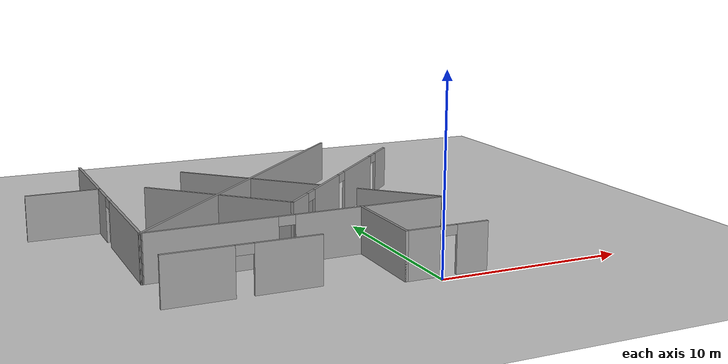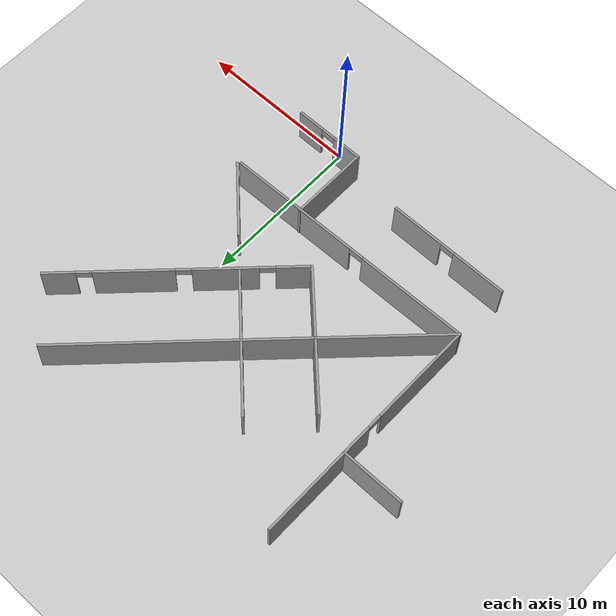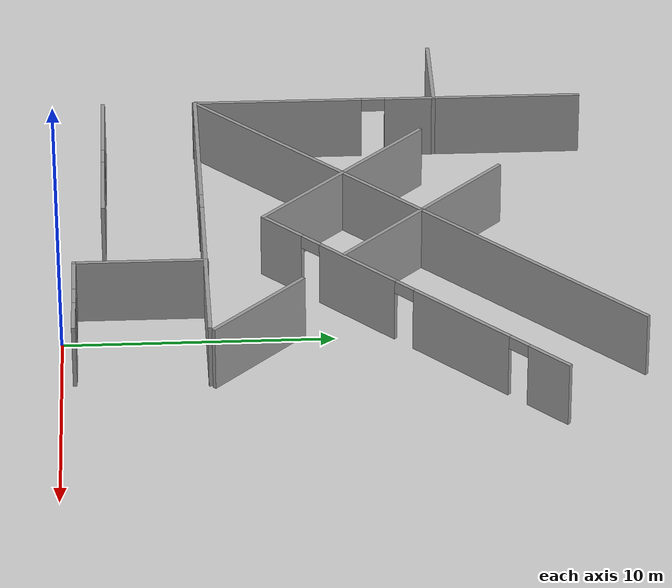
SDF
<sdf version="1.6">
 <world name="default">
  <model name="ground_plane">
   <static>1</static>
   <link name="link">
    <collision name="collision">
     <geometry><plane><normal>0 0 1</normal><size>100 100</size></plane></geometry>
     <surface>
      <contact><collide_bitmask>65535</collide_bitmask></contact>
      <friction><ode><mu>100</mu><mu2>50</mu2></ode></friction>
     </surface>
    </collision>
    <visual name="visual">
     <cast_shadows>0</cast_shadows>
     <geometry><plane><normal>0 0 1</normal><size>100 100</size></plane></geometry>
     <material>
      <script><uri>file://media/materials/scripts/gazebo.material</uri><name>Gazebo/Grey</name></script>
     </material>
    </visual>
   </link>
  </model>
  <model name="Level_1_with_doors">
   <link name="Wall_111">
    <pose>-19.8804 -8.17464 0 0 -0 0</pose>
    <visual name="Wall_111_Visual">
     <pose>0 0 1.25 0 -0 0</pose>
     <geometry><box><size>4 0.15 2.5</size></box></geometry>
     <material>
      <script><uri>file://media/materials/scripts/gazebo.material</uri><name>Gazebo/Grey</name></script>
      <ambient>1 1 1 1</ambient>
      <shader type="pixel"/>
     </material>
     <meta><layer>0</layer></meta>
    </visual>
    <collision name="Wall_111_Collision">
     <pose>0 0 1.25 0 -0 0</pose>
     <geometry><box><size>4 0.15 2.5</size></box></geometry>
     <surface>
      <friction>
       <ode><mu>1</mu><mu2>1</mu2><fdir1>0 0 0</fdir1><slip1>0</slip1><slip2>0</slip2></ode>
       <torsional>
        <coefficient>1</coefficient>
        <patch_radius>0</patch_radius>
        <surface_radius>0</surface_radius>
        <use_patch_radius>1</use_patch_radius>
        <ode><slip>0</slip></ode>
       </torsional>
      </friction>
      <bounce><restitution_coefficient>0</restitution_coefficient><threshold>1e+06</threshold></bounce>
      <contact>
       <collide_without_contact>0</collide_without_contact>
       <collide_without_contact_bitmask>1</collide_without_contact_bitmask>
       <collide_bitmask>1</collide_bitmask>
       <ode>
        <soft_cfm>0</soft_cfm>
        <soft_erp>0.2</soft_erp>
        <kp>1e+13</kp>
        <kd>1</kd>
        <max_vel>0.01</max_vel>
        <min_depth>0</min_depth>
       </ode>
       <bullet>
        <split_impulse>1</split_impulse>
        <split_impulse_penetration_threshold>-0.01</split_impulse_penetration_threshold>
        <soft_cfm>0</soft_cfm>
        <soft_erp>0.2</soft_erp>
        <kp>1e+13</kp>
        <kd>1</kd>
       </bullet>
      </contact>
     </surface>
    </collision>
   </link>
   <link name="Wall_118">
    <pose>-14.1512 -20.9839 0 0 -0 0</pose>
    <visual name="Wall_118_Visual_0">
     <pose>-2.13942 0 1.25 0 -0 0</pose>
     <geometry><box><size>3.47116 0.15 2.5</size></box></geometry>
     <material>
      <script><uri>file://media/materials/scripts/gazebo.material</uri><name>Gazebo/Grey</name></script>
      <ambient>1 1 1 1</ambient>
      <shader type="pixel"/>
     </material>
     <meta><layer>0</layer></meta>
    </visual>
    <visual name="Wall_118_Visual_1">
     <pose>2.18558 0 1.25 0 -0 0</pose>
     <geometry><box><size>3.37884 0.15 2.5</size></box></geometry>
     <material>
      <script><uri>file://media/materials/scripts/gazebo.material</uri><name>Gazebo/Grey</name></script>
      <ambient>1 1 1 1</ambient>
      <shader type="pixel"/>
     </material>
     <meta><layer>0</layer></meta>
    </visual>
    <visual name="Wall_118_Visual_2">
     <pose>0.046156 0 2.25 0 -0 0</pose>
     <geometry><box><size>0.9 0.15 0.5</size></box></geometry>
     <material>
      <script><uri>file://media/materials/scripts/gazebo.material</uri><name>Gazebo/Grey</name></script>
      <ambient>1 1 1 1</ambient>
      <shader type="pixel"/>
     </material>
     <meta><layer>0</layer></meta>
    </visual>
    <collision name="Wall_118_Collision_2">
     <pose>0.046156 0 2.25 0 -0 0</pose>
     <geometry><box><size>0.9 0.15 0.5</size></box></geometry>
     <surface>
      <friction>
       <ode><mu>1</mu><mu2>1</mu2><fdir1>0 0 0</fdir1><slip1>0</slip1><slip2>0</slip2></ode>
       <torsional>
        <coefficient>1</coefficient>
        <patch_radius>0</patch_radius>
        <surface_radius>0</surface_radius>
        <use_patch_radius>1</use_patch_radius>
        <ode><slip>0</slip></ode>
       </torsional>
      </friction>
      <bounce><restitution_coefficient>0</restitution_coefficient><threshold>1e+06</threshold></bounce>
      <contact>
       <collide_without_contact>0</collide_without_contact>
       <collide_without_contact_bitmask>1</collide_without_contact_bitmask>
       <collide_bitmask>1</collide_bitmask>
       <ode>
        <soft_cfm>0</soft_cfm>
        <soft_erp>0.2</soft_erp>
        <kp>1e+13</kp>
        <kd>1</kd>
        <max_vel>0.01</max_vel>
        <min_depth>0</min_depth>
       </ode>
       <bullet>
        <split_impulse>1</split_impulse>
        <split_impulse_penetration_threshold>-0.01</split_impulse_penetration_threshold>
        <soft_cfm>0</soft_cfm>
        <soft_erp>0.2</soft_erp>
        <kp>1e+13</kp>
        <kd>1</kd>
       </bullet>
      </contact>
     </surface>
    </collision>
    <collision name="Wall_118_Collision_1">
     <pose>2.18558 0 1.25 0 -0 0</pose>
     <geometry><box><size>3.37884 0.15 2.5</size></box></geometry>
     <surface>
      <friction>
       <ode><mu>1</mu><mu2>1</mu2><fdir1>0 0 0</fdir1><slip1>0</slip1><slip2>0</slip2></ode>
       <torsional>
        <coefficient>1</coefficient>
        <patch_radius>0</patch_radius>
        <surface_radius>0</surface_radius>
        <use_patch_radius>1</use_patch_radius>
        <ode><slip>0</slip></ode>
       </torsional>
      </friction>
      <bounce><restitution_coefficient>0</restitution_coefficient><threshold>1e+06</threshold></bounce>
      <contact>
       <collide_without_contact>0</collide_without_contact>
       <collide_without_contact_bitmask>1</collide_without_contact_bitmask>
       <collide_bitmask>1</collide_bitmask>
       <ode>
        <soft_cfm>0</soft_cfm>
        <soft_erp>0.2</soft_erp>
        <kp>1e+13</kp>
        <kd>1</kd>
        <max_vel>0.01</max_vel>
        <min_depth>0</min_depth>
       </ode>
       <bullet>
        <split_impulse>1</split_impulse>
        <split_impulse_penetration_threshold>-0.01</split_impulse_penetration_threshold>
        <soft_cfm>0</soft_cfm>
        <soft_erp>0.2</soft_erp>
        <kp>1e+13</kp>
        <kd>1</kd>
       </bullet>
      </contact>
     </surface>
    </collision>
    <collision name="Wall_118_Collision_0">
     <pose>-2.13942 0 1.25 0 -0 0</pose>
     <geometry><box><size>3.47116 0.15 2.5</size></box></geometry>
     <surface>
      <friction>
       <ode><mu>1</mu><mu2>1</mu2><fdir1>0 0 0</fdir1><slip1>0</slip1><slip2>0</slip2></ode>
       <torsional>
        <coefficient>1</coefficient>
        <patch_radius>0</patch_radius>
        <surface_radius>0</surface_radius>
        <use_patch_radius>1</use_patch_radius>
        <ode><slip>0</slip></ode>
       </torsional>
      </friction>
      <bounce><restitution_coefficient>0</restitution_coefficient><threshold>1e+06</threshold></bounce>
      <contact>
       <collide_without_contact>0</collide_without_contact>
       <collide_without_contact_bitmask>1</collide_without_contact_bitmask>
       <collide_bitmask>1</collide_bitmask>
       <ode>
        <soft_cfm>0</soft_cfm>
        <soft_erp>0.2</soft_erp>
        <kp>1e+13</kp>
        <kd>1</kd>
        <max_vel>0.01</max_vel>
        <min_depth>0</min_depth>
       </ode>
       <bullet>
        <split_impulse>1</split_impulse>
        <split_impulse_penetration_threshold>-0.01</split_impulse_penetration_threshold>
        <soft_cfm>0</soft_cfm>
        <soft_erp>0.2</soft_erp>
        <kp>1e+13</kp>
        <kd>1</kd>
       </bullet>
      </contact>
     </surface>
    </collision>
   </link>
   <link name="Wall_121">
    <pose>-6.49249 -19.6173 0 0 0 -1.5708</pose>
    <visual name="Wall_121_Visual">
     <pose>0 0 1.25 0 -0 0</pose>
     <geometry><box><size>5 0.15 2.5</size></box></geometry>
     <material>
      <script><uri>file://media/materials/scripts/gazebo.material</uri><name>Gazebo/Grey</name></script>
      <ambient>1 1 1 1</ambient>
      <shader type="pixel"/>
     </material>
     <meta><layer>0</layer></meta>
    </visual>
    <collision name="Wall_121_Collision">
     <pose>0 0 1.25 0 -0 0</pose>
     <geometry><box><size>5 0.15 2.5</size></box></geometry>
     <surface>
      <friction>
       <ode><mu>1</mu><mu2>1</mu2><fdir1>0 0 0</fdir1><slip1>0</slip1><slip2>0</slip2></ode>
       <torsional>
        <coefficient>1</coefficient>
        <patch_radius>0</patch_radius>
        <surface_radius>0</surface_radius>
        <use_patch_radius>1</use_patch_radius>
        <ode><slip>0</slip></ode>
       </torsional>
      </friction>
      <bounce><restitution_coefficient>0</restitution_coefficient><threshold>1e+06</threshold></bounce>
      <contact>
       <collide_without_contact>0</collide_without_contact>
       <collide_without_contact_bitmask>1</collide_without_contact_bitmask>
       <collide_bitmask>1</collide_bitmask>
       <ode>
        <soft_cfm>0</soft_cfm>
        <soft_erp>0.2</soft_erp>
        <kp>1e+13</kp>
        <kd>1</kd>
        <max_vel>0.01</max_vel>
        <min_depth>0</min_depth>
       </ode>
       <bullet>
        <split_impulse>1</split_impulse>
        <split_impulse_penetration_threshold>-0.01</split_impulse_penetration_threshold>
        <soft_cfm>0</soft_cfm>
        <soft_erp>0.2</soft_erp>
        <kp>1e+13</kp>
        <kd>1</kd>
       </bullet>
      </contact>
     </surface>
    </collision>
   </link>
   <link name="Wall_122">
    <pose>-4.31749 -22.0423 0 0 -0 0</pose>
    <visual name="Wall_122_Visual_0">
     <pose>-1.31155 0 1.25 0 -0 0</pose>
     <geometry><box><size>1.87689 0.15 2.5</size></box></geometry>
     <material>
      <script><uri>file://media/materials/scripts/gazebo.material</uri><name>Gazebo/Grey</name></script>
      <ambient>1 1 1 1</ambient>
      <shader type="pixel"/>
     </material>
     <meta><layer>0</layer></meta>
    </visual>
    <visual name="Wall_122_Visual_2">
     <pose>0.076894 0 2.25 0 -0 0</pose>
     <geometry><box><size>0.9 0.15 0.5</size></box></geometry>
     <material>
      <script><uri>file://media/materials/scripts/gazebo.material</uri><name>Gazebo/Grey</name></script>
      <ambient>1 1 1 1</ambient>
      <shader type="pixel"/>
     </material>
     <meta><layer>0</layer></meta>
    </visual>
    <visual name="Wall_122_Visual_1">
     <pose>1.38845 0 1.25 0 -0 0</pose>
     <geometry><box><size>1.72311 0.15 2.5</size></box></geometry>
     <material>
      <script><uri>file://media/materials/scripts/gazebo.material</uri><name>Gazebo/Grey</name></script>
      <ambient>1 1 1 1</ambient>
      <shader type="pixel"/>
     </material>
     <meta><layer>0</layer></meta>
    </visual>
    <collision name="Wall_122_Collision_1">
     <pose>1.38845 0 1.25 0 -0 0</pose>
     <geometry><box><size>1.72311 0.15 2.5</size></box></geometry>
     <surface>
      <friction>
       <ode><mu>1</mu><mu2>1</mu2><fdir1>0 0 0</fdir1><slip1>0</slip1><slip2>0</slip2></ode>
       <torsional>
        <coefficient>1</coefficient>
        <patch_radius>0</patch_radius>
        <surface_radius>0</surface_radius>
        <use_patch_radius>1</use_patch_radius>
        <ode><slip>0</slip></ode>
       </torsional>
      </friction>
      <bounce><restitution_coefficient>0</restitution_coefficient><threshold>1e+06</threshold></bounce>
      <contact>
       <collide_without_contact>0</collide_without_contact>
       <collide_without_contact_bitmask>1</collide_without_contact_bitmask>
       <collide_bitmask>1</collide_bitmask>
       <ode>
        <soft_cfm>0</soft_cfm>
        <soft_erp>0.2</soft_erp>
        <kp>1e+13</kp>
        <kd>1</kd>
        <max_vel>0.01</max_vel>
        <min_depth>0</min_depth>
       </ode>
       <bullet>
        <split_impulse>1</split_impulse>
        <split_impulse_penetration_threshold>-0.01</split_impulse_penetration_threshold>
        <soft_cfm>0</soft_cfm>
        <soft_erp>0.2</soft_erp>
        <kp>1e+13</kp>
        <kd>1</kd>
       </bullet>
      </contact>
     </surface>
    </collision>
    <collision name="Wall_122_Collision_2">
     <pose>0.076894 0 2.25 0 -0 0</pose>
     <geometry><box><size>0.9 0.15 0.5</size></box></geometry>
     <surface>
      <friction>
       <ode><mu>1</mu><mu2>1</mu2><fdir1>0 0 0</fdir1><slip1>0</slip1><slip2>0</slip2></ode>
       <torsional>
        <coefficient>1</coefficient>
        <patch_radius>0</patch_radius>
        <surface_radius>0</surface_radius>
        <use_patch_radius>1</use_patch_radius>
        <ode><slip>0</slip></ode>
       </torsional>
      </friction>
      <bounce><restitution_coefficient>0</restitution_coefficient><threshold>1e+06</threshold></bounce>
      <contact>
       <collide_without_contact>0</collide_without_contact>
       <collide_without_contact_bitmask>1</collide_without_contact_bitmask>
       <collide_bitmask>1</collide_bitmask>
       <ode>
        <soft_cfm>0</soft_cfm>
        <soft_erp>0.2</soft_erp>
        <kp>1e+13</kp>
        <kd>1</kd>
        <max_vel>0.01</max_vel>
        <min_depth>0</min_depth>
       </ode>
       <bullet>
        <split_impulse>1</split_impulse>
        <split_impulse_penetration_threshold>-0.01</split_impulse_penetration_threshold>
        <soft_cfm>0</soft_cfm>
        <soft_erp>0.2</soft_erp>
        <kp>1e+13</kp>
        <kd>1</kd>
       </bullet>
      </contact>
     </surface>
    </collision>
    <collision name="Wall_122_Collision_0">
     <pose>-1.31155 0 1.25 0 -0 0</pose>
     <geometry><box><size>1.87689 0.15 2.5</size></box></geometry>
     <surface>
      <friction>
       <ode><mu>1</mu><mu2>1</mu2><fdir1>0 0 0</fdir1><slip1>0</slip1><slip2>0</slip2></ode>
       <torsional>
        <coefficient>1</coefficient>
        <patch_radius>0</patch_radius>
        <surface_radius>0</surface_radius>
        <use_patch_radius>1</use_patch_radius>
        <ode><slip>0</slip></ode>
       </torsional>
      </friction>
      <bounce><restitution_coefficient>0</restitution_coefficient><threshold>1e+06</threshold></bounce>
      <contact>
       <collide_without_contact>0</collide_without_contact>
       <collide_without_contact_bitmask>1</collide_without_contact_bitmask>
       <collide_bitmask>1</collide_bitmask>
       <ode>
        <soft_cfm>0</soft_cfm>
        <soft_erp>0.2</soft_erp>
        <kp>1e+13</kp>
        <kd>1</kd>
        <max_vel>0.01</max_vel>
        <min_depth>0</min_depth>
       </ode>
       <bullet>
        <split_impulse>1</split_impulse>
        <split_impulse_penetration_threshold>-0.01</split_impulse_penetration_threshold>
        <soft_cfm>0</soft_cfm>
        <soft_erp>0.2</soft_erp>
        <kp>1e+13</kp>
        <kd>1</kd>
       </bullet>
      </contact>
     </surface>
    </collision>
   </link>
   <link name="Wall_69">
    <pose>-9.94879 -17.2886 0 0 -0 0.016989</pose>
    <visual name="Wall_69_Visual_1">
     <pose>3.92632 0 1.25 0 -0 0</pose>
     <geometry><box><size>8.31218 0.15 2.5</size></box></geometry>
     <material>
      <script><uri>file://media/materials/scripts/gazebo.material</uri><name>Gazebo/Grey</name></script>
      <ambient>1 1 1 1</ambient>
      <shader type="pixel"/>
     </material>
     <meta><layer>0</layer></meta>
    </visual>
    <visual name="Wall_69_Visual_2">
     <pose>-0.67977 0 2.25 0 -0 0</pose>
     <geometry><box><size>0.9 0.15 0.5</size></box></geometry>
     <material>
      <script><uri>file://media/materials/scripts/gazebo.material</uri><name>Gazebo/Grey</name></script>
      <ambient>1 1 1 1</ambient>
      <shader type="pixel"/>
     </material>
     <meta><layer>0</layer></meta>
    </visual>
    <visual name="Wall_69_Visual_0">
     <pose>-4.60609 0 1.25 0 -0 0</pose>
     <geometry><box><size>6.95264 0.15 2.5</size></box></geometry>
     <material>
      <script><uri>file://media/materials/scripts/gazebo.material</uri><name>Gazebo/Grey</name></script>
      <ambient>1 1 1 1</ambient>
      <shader type="pixel"/>
     </material>
     <meta><layer>0</layer></meta>
    </visual>
    <collision name="Wall_69_Collision_0">
     <pose>-4.60609 0 1.25 0 -0 0</pose>
     <geometry><box><size>6.95264 0.15 2.5</size></box></geometry>
     <surface>
      <friction>
       <ode><mu>1</mu><mu2>1</mu2><fdir1>0 0 0</fdir1><slip1>0</slip1><slip2>0</slip2></ode>
       <torsional>
        <coefficient>1</coefficient>
        <patch_radius>0</patch_radius>
        <surface_radius>0</surface_radius>
        <use_patch_radius>1</use_patch_radius>
        <ode><slip>0</slip></ode>
       </torsional>
      </friction>
      <bounce><restitution_coefficient>0</restitution_coefficient><threshold>1e+06</threshold></bounce>
      <contact>
       <collide_without_contact>0</collide_without_contact>
       <collide_without_contact_bitmask>1</collide_without_contact_bitmask>
       <collide_bitmask>1</collide_bitmask>
       <ode>
        <soft_cfm>0</soft_cfm>
        <soft_erp>0.2</soft_erp>
        <kp>1e+13</kp>
        <kd>1</kd>
        <max_vel>0.01</max_vel>
        <min_depth>0</min_depth>
       </ode>
       <bullet>
        <split_impulse>1</split_impulse>
        <split_impulse_penetration_threshold>-0.01</split_impulse_penetration_threshold>
        <soft_cfm>0</soft_cfm>
        <soft_erp>0.2</soft_erp>
        <kp>1e+13</kp>
        <kd>1</kd>
       </bullet>
      </contact>
     </surface>
    </collision>
    <collision name="Wall_69_Collision_1">
     <pose>3.92632 0 1.25 0 -0 0</pose>
     <geometry><box><size>8.31218 0.15 2.5</size></box></geometry>
     <surface>
      <friction>
       <ode><mu>1</mu><mu2>1</mu2><fdir1>0 0 0</fdir1><slip1>0</slip1><slip2>0</slip2></ode>
       <torsional>
        <coefficient>1</coefficient>
        <patch_radius>0</patch_radius>
        <surface_radius>0</surface_radius>
        <use_patch_radius>1</use_patch_radius>
        <ode><slip>0</slip></ode>
       </torsional>
      </friction>
      <bounce><restitution_coefficient>0</restitution_coefficient><threshold>1e+06</threshold></bounce>
      <contact>
       <collide_without_contact>0</collide_without_contact>
       <collide_without_contact_bitmask>1</collide_without_contact_bitmask>
       <collide_bitmask>1</collide_bitmask>
       <ode>
        <soft_cfm>0</soft_cfm>
        <soft_erp>0.2</soft_erp>
        <kp>1e+13</kp>
        <kd>1</kd>
        <max_vel>0.01</max_vel>
        <min_depth>0</min_depth>
       </ode>
       <bullet>
        <split_impulse>1</split_impulse>
        <split_impulse_penetration_threshold>-0.01</split_impulse_penetration_threshold>
        <soft_cfm>0</soft_cfm>
        <soft_erp>0.2</soft_erp>
        <kp>1e+13</kp>
        <kd>1</kd>
       </bullet>
      </contact>
     </surface>
    </collision>
    <collision name="Wall_69_Collision_2">
     <pose>-0.67977 0 2.25 0 -0 0</pose>
     <geometry><box><size>0.9 0.15 0.5</size></box></geometry>
     <surface>
      <friction>
       <ode><mu>1</mu><mu2>1</mu2><fdir1>0 0 0</fdir1><slip1>0</slip1><slip2>0</slip2></ode>
       <torsional>
        <coefficient>1</coefficient>
        <patch_radius>0</patch_radius>
        <surface_radius>0</surface_radius>
        <use_patch_radius>1</use_patch_radius>
        <ode><slip>0</slip></ode>
       </torsional>
      </friction>
      <bounce><restitution_coefficient>0</restitution_coefficient><threshold>1e+06</threshold></bounce>
      <contact>
       <collide_without_contact>0</collide_without_contact>
       <collide_without_contact_bitmask>1</collide_without_contact_bitmask>
       <collide_bitmask>1</collide_bitmask>
       <ode>
        <soft_cfm>0</soft_cfm>
        <soft_erp>0.2</soft_erp>
        <kp>1e+13</kp>
        <kd>1</kd>
        <max_vel>0.01</max_vel>
        <min_depth>0</min_depth>
       </ode>
       <bullet>
        <split_impulse>1</split_impulse>
        <split_impulse_penetration_threshold>-0.01</split_impulse_penetration_threshold>
        <soft_cfm>0</soft_cfm>
        <soft_erp>0.2</soft_erp>
        <kp>1e+13</kp>
        <kd>1</kd>
       </bullet>
      </contact>
     </surface>
    </collision>
   </link>
   <link name="Wall_74">
    <pose>-9.96504 -9.43434 0 0 -0 0.785398</pose>
    <visual name="Wall_74_Visual">
     <pose>0 0 1.25 0 -0 0</pose>
     <geometry><box><size>22.75 0.15 2.5</size></box></geometry>
     <material>
      <script><uri>file://media/materials/scripts/gazebo.material</uri><name>Gazebo/Grey</name></script>
      <ambient>1 1 1 1</ambient>
      <shader type="pixel"/>
     </material>
     <meta><layer>0</layer></meta>
    </visual>
    <collision name="Wall_74_Collision">
     <pose>0 0 1.25 0 -0 0</pose>
     <geometry><box><size>22.75 0.15 2.5</size></box></geometry>
     <surface>
      <friction>
       <ode><mu>1</mu><mu2>1</mu2><fdir1>0 0 0</fdir1><slip1>0</slip1><slip2>0</slip2></ode>
       <torsional>
        <coefficient>1</coefficient>
        <patch_radius>0</patch_radius>
        <surface_radius>0</surface_radius>
        <use_patch_radius>1</use_patch_radius>
        <ode><slip>0</slip></ode>
       </torsional>
      </friction>
      <bounce><restitution_coefficient>0</restitution_coefficient><threshold>1e+06</threshold></bounce>
      <contact>
       <collide_without_contact>0</collide_without_contact>
       <collide_without_contact_bitmask>1</collide_without_contact_bitmask>
       <collide_bitmask>1</collide_bitmask>
       <ode>
        <soft_cfm>0</soft_cfm>
        <soft_erp>0.2</soft_erp>
        <kp>1e+13</kp>
        <kd>1</kd>
        <max_vel>0.01</max_vel>
        <min_depth>0</min_depth>
       </ode>
       <bullet>
        <split_impulse>1</split_impulse>
        <split_impulse_penetration_threshold>-0.01</split_impulse_penetration_threshold>
        <soft_cfm>0</soft_cfm>
        <soft_erp>0.2</soft_erp>
        <kp>1e+13</kp>
        <kd>1</kd>
       </bullet>
      </contact>
     </surface>
    </collision>
   </link>
   <link name="Wall_76">
    <pose>-4.14909 -9.77022 0 0 0 -2.35619</pose>
    <visual name="Wall_76_Visual_6">
     <pose>4.98696 0 2.25 0 -0 0</pose>
     <geometry><box><size>0.9 0.15 0.5</size></box></geometry>
     <material>
      <script><uri>file://media/materials/scripts/gazebo.material</uri><name>Gazebo/Grey</name></script>
      <ambient>1 1 1 1</ambient>
      <shader type="pixel"/>
     </material>
     <meta><layer>0</layer></meta>
    </visual>
    <visual name="Wall_76_Visual_2">
     <pose>2.66947 0 1.25 0 -0 0</pose>
     <geometry><box><size>3.73498 0.15 2.5</size></box></geometry>
     <material>
      <script><uri>file://media/materials/scripts/gazebo.material</uri><name>Gazebo/Grey</name></script>
      <ambient>1 1 1 1</ambient>
      <shader type="pixel"/>
     </material>
     <meta><layer>0</layer></meta>
    </visual>
    <visual name="Wall_76_Visual_3">
     <pose>6.46848 0 1.25 0 -0 0</pose>
     <geometry><box><size>2.06304 0.15 2.5</size></box></geometry>
     <material>
      <script><uri>file://media/materials/scripts/gazebo.material</uri><name>Gazebo/Grey</name></script>
      <ambient>1 1 1 1</ambient>
      <shader type="pixel"/>
     </material>
     <meta><layer>0</layer></meta>
    </visual>
    <visual name="Wall_76_Visual_5">
     <pose>0.351977 0 2.25 0 -0 0</pose>
     <geometry><box><size>0.9 0.15 0.5</size></box></geometry>
     <material>
      <script><uri>file://media/materials/scripts/gazebo.material</uri><name>Gazebo/Grey</name></script>
      <ambient>1 1 1 1</ambient>
      <shader type="pixel"/>
     </material>
     <meta><layer>0</layer></meta>
    </visual>
    <visual name="Wall_76_Visual_4">
     <pose>-5.13009 0 2.25 0 -0 0</pose>
     <geometry><box><size>0.9 0.15 0.5</size></box></geometry>
     <material>
      <script><uri>file://media/materials/scripts/gazebo.material</uri><name>Gazebo/Grey</name></script>
      <ambient>1 1 1 1</ambient>
      <shader type="pixel"/>
     </material>
     <meta><layer>0</layer></meta>
    </visual>
    <visual name="Wall_76_Visual_1">
     <pose>-2.38906 0 1.25 0 -0 0</pose>
     <geometry><box><size>4.58207 0.15 2.5</size></box></geometry>
     <material>
      <script><uri>file://media/materials/scripts/gazebo.material</uri><name>Gazebo/Grey</name></script>
      <ambient>1 1 1 1</ambient>
      <shader type="pixel"/>
     </material>
     <meta><layer>0</layer></meta>
    </visual>
    <visual name="Wall_76_Visual_0">
     <pose>-6.54005 0 1.25 0 -0 0</pose>
     <geometry><box><size>1.91991 0.15 2.5</size></box></geometry>
     <material>
      <script><uri>file://media/materials/scripts/gazebo.material</uri><name>Gazebo/Grey</name></script>
      <ambient>1 1 1 1</ambient>
      <shader type="pixel"/>
     </material>
     <meta><layer>0</layer></meta>
    </visual>
    <collision name="Wall_76_Collision_0">
     <pose>-6.54005 0 1.25 0 -0 0</pose>
     <geometry><box><size>1.91991 0.15 2.5</size></box></geometry>
     <surface>
      <friction>
       <ode><mu>1</mu><mu2>1</mu2><fdir1>0 0 0</fdir1><slip1>0</slip1><slip2>0</slip2></ode>
       <torsional>
        <coefficient>1</coefficient>
        <patch_radius>0</patch_radius>
        <surface_radius>0</surface_radius>
        <use_patch_radius>1</use_patch_radius>
        <ode><slip>0</slip></ode>
       </torsional>
      </friction>
      <bounce><restitution_coefficient>0</restitution_coefficient><threshold>1e+06</threshold></bounce>
      <contact>
       <collide_without_contact>0</collide_without_contact>
       <collide_without_contact_bitmask>1</collide_without_contact_bitmask>
       <collide_bitmask>1</collide_bitmask>
       <ode>
        <soft_cfm>0</soft_cfm>
        <soft_erp>0.2</soft_erp>
        <kp>1e+13</kp>
        <kd>1</kd>
        <max_vel>0.01</max_vel>
        <min_depth>0</min_depth>
       </ode>
       <bullet>
        <split_impulse>1</split_impulse>
        <split_impulse_penetration_threshold>-0.01</split_impulse_penetration_threshold>
        <soft_cfm>0</soft_cfm>
        <soft_erp>0.2</soft_erp>
        <kp>1e+13</kp>
        <kd>1</kd>
       </bullet>
      </contact>
     </surface>
    </collision>
    <collision name="Wall_76_Collision_1">
     <pose>-2.38906 0 1.25 0 -0 0</pose>
     <geometry><box><size>4.58207 0.15 2.5</size></box></geometry>
     <surface>
      <friction>
       <ode><mu>1</mu><mu2>1</mu2><fdir1>0 0 0</fdir1><slip1>0</slip1><slip2>0</slip2></ode>
       <torsional>
        <coefficient>1</coefficient>
        <patch_radius>0</patch_radius>
        <surface_radius>0</surface_radius>
        <use_patch_radius>1</use_patch_radius>
        <ode><slip>0</slip></ode>
       </torsional>
      </friction>
      <bounce><restitution_coefficient>0</restitution_coefficient><threshold>1e+06</threshold></bounce>
      <contact>
       <collide_without_contact>0</collide_without_contact>
       <collide_without_contact_bitmask>1</collide_without_contact_bitmask>
       <collide_bitmask>1</collide_bitmask>
       <ode>
        <soft_cfm>0</soft_cfm>
        <soft_erp>0.2</soft_erp>
        <kp>1e+13</kp>
        <kd>1</kd>
        <max_vel>0.01</max_vel>
        <min_depth>0</min_depth>
       </ode>
       <bullet>
        <split_impulse>1</split_impulse>
        <split_impulse_penetration_threshold>-0.01</split_impulse_penetration_threshold>
        <soft_cfm>0</soft_cfm>
        <soft_erp>0.2</soft_erp>
        <kp>1e+13</kp>
        <kd>1</kd>
       </bullet>
      </contact>
     </surface>
    </collision>
    <collision name="Wall_76_Collision_5">
     <pose>0.351977 0 2.25 0 -0 0</pose>
     <geometry><box><size>0.9 0.15 0.5</size></box></geometry>
     <surface>
      <friction>
       <ode><mu>1</mu><mu2>1</mu2><fdir1>0 0 0</fdir1><slip1>0</slip1><slip2>0</slip2></ode>
       <torsional>
        <coefficient>1</coefficient>
        <patch_radius>0</patch_radius>
        <surface_radius>0</surface_radius>
        <use_patch_radius>1</use_patch_radius>
        <ode><slip>0</slip></ode>
       </torsional>
      </friction>
      <bounce><restitution_coefficient>0</restitution_coefficient><threshold>1e+06</threshold></bounce>
      <contact>
       <collide_without_contact>0</collide_without_contact>
       <collide_without_contact_bitmask>1</collide_without_contact_bitmask>
       <collide_bitmask>1</collide_bitmask>
       <ode>
        <soft_cfm>0</soft_cfm>
        <soft_erp>0.2</soft_erp>
        <kp>1e+13</kp>
        <kd>1</kd>
        <max_vel>0.01</max_vel>
        <min_depth>0</min_depth>
       </ode>
       <bullet>
        <split_impulse>1</split_impulse>
        <split_impulse_penetration_threshold>-0.01</split_impulse_penetration_threshold>
        <soft_cfm>0</soft_cfm>
        <soft_erp>0.2</soft_erp>
        <kp>1e+13</kp>
        <kd>1</kd>
       </bullet>
      </contact>
     </surface>
    </collision>
    <collision name="Wall_76_Collision_6">
     <pose>4.98696 0 2.25 0 -0 0</pose>
     <geometry><box><size>0.9 0.15 0.5</size></box></geometry>
     <surface>
      <friction>
       <ode><mu>1</mu><mu2>1</mu2><fdir1>0 0 0</fdir1><slip1>0</slip1><slip2>0</slip2></ode>
       <torsional>
        <coefficient>1</coefficient>
        <patch_radius>0</patch_radius>
        <surface_radius>0</surface_radius>
        <use_patch_radius>1</use_patch_radius>
        <ode><slip>0</slip></ode>
       </torsional>
      </friction>
      <bounce><restitution_coefficient>0</restitution_coefficient><threshold>1e+06</threshold></bounce>
      <contact>
       <collide_without_contact>0</collide_without_contact>
       <collide_without_contact_bitmask>1</collide_without_contact_bitmask>
       <collide_bitmask>1</collide_bitmask>
       <ode>
        <soft_cfm>0</soft_cfm>
        <soft_erp>0.2</soft_erp>
        <kp>1e+13</kp>
        <kd>1</kd>
        <max_vel>0.01</max_vel>
        <min_depth>0</min_depth>
       </ode>
       <bullet>
        <split_impulse>1</split_impulse>
        <split_impulse_penetration_threshold>-0.01</split_impulse_penetration_threshold>
        <soft_cfm>0</soft_cfm>
        <soft_erp>0.2</soft_erp>
        <kp>1e+13</kp>
        <kd>1</kd>
       </bullet>
      </contact>
     </surface>
    </collision>
    <collision name="Wall_76_Collision_4">
     <pose>-5.13009 0 2.25 0 -0 0</pose>
     <geometry><box><size>0.9 0.15 0.5</size></box></geometry>
     <surface>
      <friction>
       <ode><mu>1</mu><mu2>1</mu2><fdir1>0 0 0</fdir1><slip1>0</slip1><slip2>0</slip2></ode>
       <torsional>
        <coefficient>1</coefficient>
        <patch_radius>0</patch_radius>
        <surface_radius>0</surface_radius>
        <use_patch_radius>1</use_patch_radius>
        <ode><slip>0</slip></ode>
       </torsional>
      </friction>
      <bounce><restitution_coefficient>0</restitution_coefficient><threshold>1e+06</threshold></bounce>
      <contact>
       <collide_without_contact>0</collide_without_contact>
       <collide_without_contact_bitmask>1</collide_without_contact_bitmask>
       <collide_bitmask>1</collide_bitmask>
       <ode>
        <soft_cfm>0</soft_cfm>
        <soft_erp>0.2</soft_erp>
        <kp>1e+13</kp>
        <kd>1</kd>
        <max_vel>0.01</max_vel>
        <min_depth>0</min_depth>
       </ode>
       <bullet>
        <split_impulse>1</split_impulse>
        <split_impulse_penetration_threshold>-0.01</split_impulse_penetration_threshold>
        <soft_cfm>0</soft_cfm>
        <soft_erp>0.2</soft_erp>
        <kp>1e+13</kp>
        <kd>1</kd>
       </bullet>
      </contact>
     </surface>
    </collision>
    <collision name="Wall_76_Collision_3">
     <pose>6.46848 0 1.25 0 -0 0</pose>
     <geometry><box><size>2.06304 0.15 2.5</size></box></geometry>
     <surface>
      <friction>
       <ode><mu>1</mu><mu2>1</mu2><fdir1>0 0 0</fdir1><slip1>0</slip1><slip2>0</slip2></ode>
       <torsional>
        <coefficient>1</coefficient>
        <patch_radius>0</patch_radius>
        <surface_radius>0</surface_radius>
        <use_patch_radius>1</use_patch_radius>
        <ode><slip>0</slip></ode>
       </torsional>
      </friction>
      <bounce><restitution_coefficient>0</restitution_coefficient><threshold>1e+06</threshold></bounce>
      <contact>
       <collide_without_contact>0</collide_without_contact>
       <collide_without_contact_bitmask>1</collide_without_contact_bitmask>
       <collide_bitmask>1</collide_bitmask>
       <ode>
        <soft_cfm>0</soft_cfm>
        <soft_erp>0.2</soft_erp>
        <kp>1e+13</kp>
        <kd>1</kd>
        <max_vel>0.01</max_vel>
        <min_depth>0</min_depth>
       </ode>
       <bullet>
        <split_impulse>1</split_impulse>
        <split_impulse_penetration_threshold>-0.01</split_impulse_penetration_threshold>
        <soft_cfm>0</soft_cfm>
        <soft_erp>0.2</soft_erp>
        <kp>1e+13</kp>
        <kd>1</kd>
       </bullet>
      </contact>
     </surface>
    </collision>
    <collision name="Wall_76_Collision_2">
     <pose>2.66947 0 1.25 0 -0 0</pose>
     <geometry><box><size>3.73498 0.15 2.5</size></box></geometry>
     <surface>
      <friction>
       <ode><mu>1</mu><mu2>1</mu2><fdir1>0 0 0</fdir1><slip1>0</slip1><slip2>0</slip2></ode>
       <torsional>
        <coefficient>1</coefficient>
        <patch_radius>0</patch_radius>
        <surface_radius>0</surface_radius>
        <use_patch_radius>1</use_patch_radius>
        <ode><slip>0</slip></ode>
       </torsional>
      </friction>
      <bounce><restitution_coefficient>0</restitution_coefficient><threshold>1e+06</threshold></bounce>
      <contact>
       <collide_without_contact>0</collide_without_contact>
       <collide_without_contact_bitmask>1</collide_without_contact_bitmask>
       <collide_bitmask>1</collide_bitmask>
       <ode>
        <soft_cfm>0</soft_cfm>
        <soft_erp>0.2</soft_erp>
        <kp>1e+13</kp>
        <kd>1</kd>
        <max_vel>0.01</max_vel>
        <min_depth>0</min_depth>
       </ode>
       <bullet>
        <split_impulse>1</split_impulse>
        <split_impulse_penetration_threshold>-0.01</split_impulse_penetration_threshold>
        <soft_cfm>0</soft_cfm>
        <soft_erp>0.2</soft_erp>
        <kp>1e+13</kp>
        <kd>1</kd>
       </bullet>
      </contact>
     </surface>
    </collision>
   </link>
   <link name="Wall_77">
    <pose>-10.9373 -13.4825 0 0 -0 2.35619</pose>
    <visual name="Wall_77_Visual">
     <pose>0 0 1.25 0 -0 0</pose>
     <geometry><box><size>4.5 0.15 2.5</size></box></geometry>
     <material>
      <script><uri>file://media/materials/scripts/gazebo.material</uri><name>Gazebo/Grey</name></script>
      <ambient>1 1 1 1</ambient>
      <shader type="pixel"/>
     </material>
     <meta><layer>0</layer></meta>
    </visual>
    <collision name="Wall_77_Collision">
     <pose>0 0 1.25 0 -0 0</pose>
     <geometry><box><size>4.5 0.15 2.5</size></box></geometry>
     <surface>
      <friction>
       <ode><mu>1</mu><mu2>1</mu2><fdir1>0 0 0</fdir1><slip1>0</slip1><slip2>0</slip2></ode>
       <torsional>
        <coefficient>1</coefficient>
        <patch_radius>0</patch_radius>
        <surface_radius>0</surface_radius>
        <use_patch_radius>1</use_patch_radius>
        <ode><slip>0</slip></ode>
       </torsional>
      </friction>
      <bounce><restitution_coefficient>0</restitution_coefficient><threshold>1e+06</threshold></bounce>
      <contact>
       <collide_without_contact>0</collide_without_contact>
       <collide_without_contact_bitmask>1</collide_without_contact_bitmask>
       <collide_bitmask>1</collide_bitmask>
       <ode>
        <soft_cfm>0</soft_cfm>
        <soft_erp>0.2</soft_erp>
        <kp>1e+13</kp>
        <kd>1</kd>
        <max_vel>0.01</max_vel>
        <min_depth>0</min_depth>
       </ode>
       <bullet>
        <split_impulse>1</split_impulse>
        <split_impulse_penetration_threshold>-0.01</split_impulse_penetration_threshold>
        <soft_cfm>0</soft_cfm>
        <soft_erp>0.2</soft_erp>
        <kp>1e+13</kp>
        <kd>1</kd>
       </bullet>
      </contact>
     </surface>
    </collision>
   </link>
   <link name="Wall_78">
    <pose>-14.0132 -10.4066 0 0 -0 2.35619</pose>
    <visual name="Wall_78_Visual">
     <pose>0 0 1.25 0 -0 0</pose>
     <geometry><box><size>4.5 0.15 2.5</size></box></geometry>
     <material>
      <script><uri>file://media/materials/scripts/gazebo.material</uri><name>Gazebo/Grey</name></script>
      <ambient>1 1 1 1</ambient>
      <shader type="pixel"/>
     </material>
     <meta><layer>0</layer></meta>
    </visual>
    <collision name="Wall_78_Collision">
     <pose>0 0 1.25 0 -0 0</pose>
     <geometry><box><size>4.5 0.15 2.5</size></box></geometry>
     <surface>
      <friction>
       <ode><mu>1</mu><mu2>1</mu2><fdir1>0 0 0</fdir1><slip1>0</slip1><slip2>0</slip2></ode>
       <torsional>
        <coefficient>1</coefficient>
        <patch_radius>0</patch_radius>
        <surface_radius>0</surface_radius>
        <use_patch_radius>1</use_patch_radius>
        <ode><slip>0</slip></ode>
       </torsional>
      </friction>
      <bounce><restitution_coefficient>0</restitution_coefficient><threshold>1e+06</threshold></bounce>
      <contact>
       <collide_without_contact>0</collide_without_contact>
       <collide_without_contact_bitmask>1</collide_without_contact_bitmask>
       <collide_bitmask>1</collide_bitmask>
       <ode>
        <soft_cfm>0</soft_cfm>
        <soft_erp>0.2</soft_erp>
        <kp>1e+13</kp>
        <kd>1</kd>
        <max_vel>0.01</max_vel>
        <min_depth>0</min_depth>
       </ode>
       <bullet>
        <split_impulse>1</split_impulse>
        <split_impulse_penetration_threshold>-0.01</split_impulse_penetration_threshold>
        <soft_cfm>0</soft_cfm>
        <soft_erp>0.2</soft_erp>
        <kp>1e+13</kp>
        <kd>1</kd>
       </bullet>
      </contact>
     </surface>
    </collision>
   </link>
   <link name="Wall_82">
    <pose>-3.42003 -15.3564 0 0 0 -0.785398</pose>
    <visual name="Wall_82_Visual">
     <pose>0 0 1.25 0 -0 0</pose>
     <geometry><box><size>4.75 0.15 2.5</size></box></geometry>
     <material>
      <script><uri>file://media/materials/scripts/gazebo.material</uri><name>Gazebo/Grey</name></script>
      <ambient>1 1 1 1</ambient>
      <shader type="pixel"/>
     </material>
     <meta><layer>0</layer></meta>
    </visual>
    <collision name="Wall_82_Collision">
     <pose>0 0 1.25 0 -0 0</pose>
     <geometry><box><size>4.75 0.15 2.5</size></box></geometry>
     <surface>
      <friction>
       <ode><mu>1</mu><mu2>1</mu2><fdir1>0 0 0</fdir1><slip1>0</slip1><slip2>0</slip2></ode>
       <torsional>
        <coefficient>1</coefficient>
        <patch_radius>0</patch_radius>
        <surface_radius>0</surface_radius>
        <use_patch_radius>1</use_patch_radius>
        <ode><slip>0</slip></ode>
       </torsional>
      </friction>
      <bounce><restitution_coefficient>0</restitution_coefficient><threshold>1e+06</threshold></bounce>
      <contact>
       <collide_without_contact>0</collide_without_contact>
       <collide_without_contact_bitmask>1</collide_without_contact_bitmask>
       <collide_bitmask>1</collide_bitmask>
       <ode>
        <soft_cfm>0</soft_cfm>
        <soft_erp>0.2</soft_erp>
        <kp>1e+13</kp>
        <kd>1</kd>
        <max_vel>0.01</max_vel>
        <min_depth>0</min_depth>
       </ode>
       <bullet>
        <split_impulse>1</split_impulse>
        <split_impulse_penetration_threshold>-0.01</split_impulse_penetration_threshold>
        <soft_cfm>0</soft_cfm>
        <soft_erp>0.2</soft_erp>
        <kp>1e+13</kp>
        <kd>1</kd>
       </bullet>
      </contact>
     </surface>
    </collision>
   </link>
   <link name="Wall_86">
    <pose>-17.9554 -9.99964 0 0 -0 1.5708</pose>
    <visual name="Wall_86_Visual_1">
     <pose>3.71264 0 1.25 0 -0 0</pose>
     <geometry><box><size>7.57472 0.15 2.5</size></box></geometry>
     <material>
      <script><uri>file://media/materials/scripts/gazebo.material</uri><name>Gazebo/Grey</name></script>
      <ambient>1 1 1 1</ambient>
      <shader type="pixel"/>
     </material>
     <meta><layer>0</layer></meta>
    </visual>
    <visual name="Wall_86_Visual_0">
     <pose>-4.23736 0 1.25 0 -0 0</pose>
     <geometry><box><size>6.52528 0.15 2.5</size></box></geometry>
     <material>
      <script><uri>file://media/materials/scripts/gazebo.material</uri><name>Gazebo/Grey</name></script>
      <ambient>1 1 1 1</ambient>
      <shader type="pixel"/>
     </material>
     <meta><layer>0</layer></meta>
    </visual>
    <visual name="Wall_86_Visual_2">
     <pose>-0.524722 0 2.25 0 -0 0</pose>
     <geometry><box><size>0.9 0.15 0.5</size></box></geometry>
     <material>
      <script><uri>file://media/materials/scripts/gazebo.material</uri><name>Gazebo/Grey</name></script>
      <ambient>1 1 1 1</ambient>
      <shader type="pixel"/>
     </material>
     <meta><layer>0</layer></meta>
    </visual>
    <collision name="Wall_86_Collision_0">
     <pose>-4.23736 0 1.25 0 -0 0</pose>
     <geometry><box><size>6.52528 0.15 2.5</size></box></geometry>
     <surface>
      <friction>
       <ode><mu>1</mu><mu2>1</mu2><fdir1>0 0 0</fdir1><slip1>0</slip1><slip2>0</slip2></ode>
       <torsional>
        <coefficient>1</coefficient>
        <patch_radius>0</patch_radius>
        <surface_radius>0</surface_radius>
        <use_patch_radius>1</use_patch_radius>
        <ode><slip>0</slip></ode>
       </torsional>
      </friction>
      <bounce><restitution_coefficient>0</restitution_coefficient><threshold>1e+06</threshold></bounce>
      <contact>
       <collide_without_contact>0</collide_without_contact>
       <collide_without_contact_bitmask>1</collide_without_contact_bitmask>
       <collide_bitmask>1</collide_bitmask>
       <ode>
        <soft_cfm>0</soft_cfm>
        <soft_erp>0.2</soft_erp>
        <kp>1e+13</kp>
        <kd>1</kd>
        <max_vel>0.01</max_vel>
        <min_depth>0</min_depth>
       </ode>
       <bullet>
        <split_impulse>1</split_impulse>
        <split_impulse_penetration_threshold>-0.01</split_impulse_penetration_threshold>
        <soft_cfm>0</soft_cfm>
        <soft_erp>0.2</soft_erp>
        <kp>1e+13</kp>
        <kd>1</kd>
       </bullet>
      </contact>
     </surface>
    </collision>
    <collision name="Wall_86_Collision_2">
     <pose>-0.524722 0 2.25 0 -0 0</pose>
     <geometry><box><size>0.9 0.15 0.5</size></box></geometry>
     <surface>
      <friction>
       <ode><mu>1</mu><mu2>1</mu2><fdir1>0 0 0</fdir1><slip1>0</slip1><slip2>0</slip2></ode>
       <torsional>
        <coefficient>1</coefficient>
        <patch_radius>0</patch_radius>
        <surface_radius>0</surface_radius>
        <use_patch_radius>1</use_patch_radius>
        <ode><slip>0</slip></ode>
       </torsional>
      </friction>
      <bounce><restitution_coefficient>0</restitution_coefficient><threshold>1e+06</threshold></bounce>
      <contact>
       <collide_without_contact>0</collide_without_contact>
       <collide_without_contact_bitmask>1</collide_without_contact_bitmask>
       <collide_bitmask>1</collide_bitmask>
       <ode>
        <soft_cfm>0</soft_cfm>
        <soft_erp>0.2</soft_erp>
        <kp>1e+13</kp>
        <kd>1</kd>
        <max_vel>0.01</max_vel>
        <min_depth>0</min_depth>
       </ode>
       <bullet>
        <split_impulse>1</split_impulse>
        <split_impulse_penetration_threshold>-0.01</split_impulse_penetration_threshold>
        <soft_cfm>0</soft_cfm>
        <soft_erp>0.2</soft_erp>
        <kp>1e+13</kp>
        <kd>1</kd>
       </bullet>
      </contact>
     </surface>
    </collision>
    <collision name="Wall_86_Collision_1">
     <pose>3.71264 0 1.25 0 -0 0</pose>
     <geometry><box><size>7.57472 0.15 2.5</size></box></geometry>
     <surface>
      <friction>
       <ode><mu>1</mu><mu2>1</mu2><fdir1>0 0 0</fdir1><slip1>0</slip1><slip2>0</slip2></ode>
       <torsional>
        <coefficient>1</coefficient>
        <patch_radius>0</patch_radius>
        <surface_radius>0</surface_radius>
        <use_patch_radius>1</use_patch_radius>
        <ode><slip>0</slip></ode>
       </torsional>
      </friction>
      <bounce><restitution_coefficient>0</restitution_coefficient><threshold>1e+06</threshold></bounce>
      <contact>
       <collide_without_contact>0</collide_without_contact>
       <collide_without_contact_bitmask>1</collide_without_contact_bitmask>
       <collide_bitmask>1</collide_bitmask>
       <ode>
        <soft_cfm>0</soft_cfm>
        <soft_erp>0.2</soft_erp>
        <kp>1e+13</kp>
        <kd>1</kd>
        <max_vel>0.01</max_vel>
        <min_depth>0</min_depth>
       </ode>
       <bullet>
        <split_impulse>1</split_impulse>
        <split_impulse_penetration_threshold>-0.01</split_impulse_penetration_threshold>
        <soft_cfm>0</soft_cfm>
        <soft_erp>0.2</soft_erp>
        <kp>1e+13</kp>
        <kd>1</kd>
       </bullet>
      </contact>
     </surface>
    </collision>
   </link>
   <link name="Wall_91">
    <pose>-9.69677 -9.07113 0 0 0 -0.785398</pose>
    <visual name="Wall_91_Visual">
     <pose>0 0 1.25 0 -0 0</pose>
     <geometry><box><size>8.75 0.15 2.5</size></box></geometry>
     <material>
      <script><uri>file://media/materials/scripts/gazebo.material</uri><name>Gazebo/Grey</name></script>
      <ambient>1 1 1 1</ambient>
      <shader type="pixel"/>
     </material>
     <meta><layer>0</layer></meta>
    </visual>
    <collision name="Wall_91_Collision">
     <pose>0 0 1.25 0 -0 0</pose>
     <geometry><box><size>8.75 0.15 2.5</size></box></geometry>
     <surface>
      <friction>
       <ode><mu>1</mu><mu2>1</mu2><fdir1>0 0 0</fdir1><slip1>0</slip1><slip2>0</slip2></ode>
       <torsional>
        <coefficient>1</coefficient>
        <patch_radius>0</patch_radius>
        <surface_radius>0</surface_radius>
        <use_patch_radius>1</use_patch_radius>
        <ode><slip>0</slip></ode>
       </torsional>
      </friction>
      <bounce><restitution_coefficient>0</restitution_coefficient><threshold>1e+06</threshold></bounce>
      <contact>
       <collide_without_contact>0</collide_without_contact>
       <collide_without_contact_bitmask>1</collide_without_contact_bitmask>
       <collide_bitmask>1</collide_bitmask>
       <ode>
        <soft_cfm>0</soft_cfm>
        <soft_erp>0.2</soft_erp>
        <kp>1e+13</kp>
        <kd>1</kd>
        <max_vel>0.01</max_vel>
        <min_depth>0</min_depth>
       </ode>
       <bullet>
        <split_impulse>1</split_impulse>
        <split_impulse_penetration_threshold>-0.01</split_impulse_penetration_threshold>
        <soft_cfm>0</soft_cfm>
        <soft_erp>0.2</soft_erp>
        <kp>1e+13</kp>
        <kd>1</kd>
       </bullet>
      </contact>
     </surface>
    </collision>
   </link>
   <static>1</static>
   <pose>4.79959 22.5424 0 0 -0 0</pose>
  </model>
  <model name="human_1_collision_model">
   <pose>0 0 -100 0 -0 0</pose>
   <static>1</static>
   <link name="link">
    <collision name="link">
     <pose>0 -0.18 0.05 3.14159 -1.57079 3.14159</pose>
     <geometry><box><size>0.44 1.62 0.6</size></box></geometry>
    </collision>
   </link>
  </model>
  <model name="human_2_collision_model">
   <pose>0 0 -100 0 -0 0</pose>
   <static>1</static>
   <link name="link">
    <collision name="link">
     <pose>0 -0.18 0.05 3.14159 -1.57079 3.14159</pose>
     <geometry><box><size>0.44 1.62 0.6</size></box></geometry>
    </collision>
   </link>
  </model>
  <model name="human_3_collision_model">
   <pose>0 0 -100 0 -0 0</pose>
   <static>1</static>
   <link name="link">
    <collision name="link">
     <pose>0 -0.18 0.05 3.14159 -1.57079 3.14159</pose>
     <geometry><box><size>0.44 1.62 0.6</size></box></geometry>
    </collision>
   </link>
  </model>
  <model name="human_4_collision_model">
   <pose>0 0 -100 0 -0 0</pose>
   <static>1</static>
   <link name="link">
    <collision name="link">
     <pose>0 -0.18 0.05 3.14159 -1.57079 3.14159</pose>
     <geometry><box><size>0.44 1.62 0.6</size></box></geometry>
    </collision>
   </link>
  </model>
  <model name="human_5_collision_model">
   <pose>0 0 -100 0 -0 0</pose>
   <static>1</static>
   <link name="link">
    <collision name="link">
     <pose>0 -0.18 0.05 3.14159 -1.57079 3.14159</pose>
     <geometry><box><size>0.44 1.62 0.6</size></box></geometry>
    </collision>
   </link>
  </model>
  <model name="human_6_collision_model">
   <pose>0 0 -100 0 -0 0</pose>
   <static>1</static>
   <link name="link">
    <collision name="link">
     <pose>0 -0.18 0.05 3.14159 -1.57079 3.14159</pose>
     <geometry><box><size>0.44 1.62 0.6</size></box></geometry>
    </collision>
   </link>
  </model>
  <model name="human_7_collision_model">
   <pose>0 0 -100 0 -0 0</pose>
   <static>1</static>
   <link name="link">
    <collision name="link">
     <pose>0 -0.18 0.05 3.14159 -1.57079 3.14159</pose>
     <geometry><box><size>0.44 1.62 0.6</size></box></geometry>
    </collision>
   </link>
  </model>
 </world>
</sdf>
